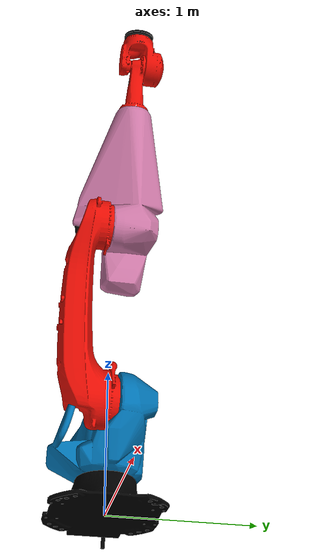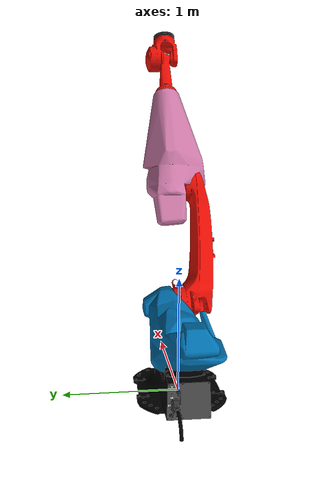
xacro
<?xml version="1.0" encoding="UTF-8"?>
<robot xmlns:xacro="http://ros.org/wiki/xacro" name="kr300_r2700_2">
  <!-- Import macro files  -->
  <xacro:include filename="$(find kuka_quantec_support)/urdf/kr300_r2700_2_macro.xacro"/>
  <xacro:include filename="$(find kuka_quantec_support)/urdf/kr_quantec_ros2_control_macro.xacro"/>
  <!-- Read additional arguments  -->
  <xacro:arg name="driver_version" default="rsi_only"/>
  <xacro:arg name="mode" default="hardware"/>
  <xacro:arg name="gpio_config" default=""/>
  <xacro:arg name="roundtrip_time" default="0"/>
  <xacro:arg name="client_ip" default="0.0.0.0"/>
  <xacro:arg name="client_port" default="59152"/>
  <xacro:arg name="mxa_client_port" default="1337"/>
  <xacro:arg name="controller_ip" default="0.0.0.0"/>
  <xacro:arg name="verify_robot_model" default="true"/>
  <xacro:arg name="prefix" default=""/>
  <xacro:arg name="x" default="0"/>
  <xacro:arg name="y" default="0"/>
  <xacro:arg name="z" default="0"/>
  <xacro:arg name="roll" default="0"/>
  <xacro:arg name="pitch" default="0"/>
  <xacro:arg name="yaw" default="0"/>
  <xacro:arg name="rsi_xml_config_file" default=""/>
  <xacro:kuka_quantec_ros2_control name="$(arg prefix)kr300_r2700_2" driver_version="$(arg driver_version)" client_ip="$(arg client_ip)" client_port="$(arg client_port)" mxa_client_port="$(arg mxa_client_port)" controller_ip="$(arg controller_ip)" prefix="$(arg prefix)" mode="$(arg mode)" gpio_config="$(arg gpio_config)" roundtrip_time="$(arg roundtrip_time)" verify_robot_model="$(arg verify_robot_model)" rsi_xml_config_file="$(arg rsi_xml_config_file)">
    <ext_axes_ros2_control_joints/>
  </xacro:kuka_quantec_ros2_control>
  <!-- world link -->
  <link name="world"/>
  <!-- robot links, joints -->
  <xacro:kuka_kr300_r2700_2_robot prefix="$(arg prefix)" package_name="kuka_quantec_support"/>
  <!-- default world - base_link joint -->
  <joint name="$(arg prefix)world-base_link" type="fixed">
    <parent link="world"/>
    <child link="$(arg prefix)base_link"/>
    <origin xyz="$(arg x) $(arg y) $(arg z)" rpy="$(arg roll) $(arg pitch) $(arg yaw)"/>
  </joint>
</robot>

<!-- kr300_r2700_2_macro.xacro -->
<robot xmlns:xacro="http://www.ros.org/wiki/xacro" name="kr300_r2700_2">
  <xacro:macro name="kuka_kr300_r2700_2_robot" params="prefix package_name">
    <link name="${prefix}base"/>
    <link name="${prefix}base_link">
      <collision>
        <geometry>
          <mesh filename="package://${package_name}/meshes/kr300_r2700_2/collision/base_link.stl"/>
        </geometry>
        <origin rpy="0.0 -0.0 0.0" xyz="0.0 0.0 0.0"/>
      </collision>
      <inertial>
        <inertia ixx="12.830880390826948" ixy="0.0" ixz="0.0" iyy="9.01196989503174" iyz="0.0" izz="14.295886015581125"/>
        <mass value="2.2596E2"/>
        <origin rpy="-0.050860131411839545 -0.0019883389878402684 1.523148744399526" xyz="-0.05948933351035582 0.002155950610727567 0.20325069304301646"/>
      </inertial>
      <visual>
        <geometry>
          <mesh filename="package://${package_name}/meshes/kr300_r2700_2/visual/base_link.dae"/>
        </geometry>
        <origin rpy="0.0 -0.0 0.0" xyz="0.0 0.0 0.0"/>
      </visual>
    </link>
    <link name="${prefix}flange"/>
    <link name="${prefix}link_1">
      <collision>
        <geometry>
          <mesh filename="package://${package_name}/meshes/kr300_r2700_2/collision/link_1.stl"/>
        </geometry>
        <origin rpy="-3.141592653589793 0.0 -0.0" xyz="0.0 -3.742520618194312e-17 0.30560000000000004"/>
      </collision>
      <inertial>
        <inertia ixx="31.78631557136323" ixy="0.0" ixz="0.0" iyy="13.331031863287903" iyz="0.0" izz="34.180672314725456"/>
        <mass value="3.6737E2"/>
        <origin rpy="-0.35119744183070917 -1.2748494702775002 -1.4514723788195054" xyz="0.02826300460026676 0.011134569507580913 -0.23533673952690748"/>
      </inertial>
      <visual>
        <geometry>
          <mesh filename="package://${package_name}/meshes/kr300_r2700_2/visual/link_1.dae"/>
        </geometry>
        <origin rpy="-3.141592653589793 0.0 -0.0" xyz="0.0 -3.742520618194312e-17 0.30560000000000004"/>
      </visual>
    </link>
    <link name="${prefix}link_2">
      <collision>
        <geometry>
          <mesh filename="package://${package_name}/meshes/kr300_r2700_2/collision/link_2.stl"/>
        </geometry>
        <origin rpy="1.5707963267948968 -0.0 1.5707963267948966" xyz="-0.645 -0.32999999999999996 0.07200000000000009"/>
      </collision>
      <inertial>
        <inertia ixx="57.79570981129111" ixy="0.0" ixz="0.0" iyy="5.63272995683346" iyz="0.0" izz="58.55984559100601"/>
        <mass value="2.3206E2"/>
        <origin rpy="-2.820395530490075 -1.2181144847004781 1.2776348095029497" xyz="0.4868709816426786 -0.0019029561320348183 -0.11763677497199002"/>
      </inertial>
      <visual>
        <geometry>
          <mesh filename="package://${package_name}/meshes/kr300_r2700_2/visual/link_2.dae"/>
        </geometry>
        <origin rpy="1.5707963267948968 -0.0 1.5707963267948966" xyz="-0.645 -0.32999999999999996 0.07200000000000009"/>
      </visual>
    </link>
    <link name="${prefix}link_3">
      <collision>
        <geometry>
          <mesh filename="package://${package_name}/meshes/kr300_r2700_2/collision/link_3.stl"/>
        </geometry>
        <origin rpy="1.5707963267948968 -0.0 -0.0" xyz="-0.33000000000000007 1.7950000000000002 0.17500000000000007"/>
      </collision>
      <inertial>
        <inertia ixx="3.511665641677197" ixy="0.0" ixz="0.0" iyy="21.236938206229333" iyz="0.0" izz="22.25683741872681"/>
        <mass value="1.9153E2"/>
        <origin rpy="2.1669667459514144 -0.06384171041203492 -0.054172455510610194" xyz="0.17268469691432153 -0.0754866078421135 0.13713156998903567"/>
      </inertial>
      <visual>
        <geometry>
          <mesh filename="package://${package_name}/meshes/kr300_r2700_2/visual/link_3.dae"/>
        </geometry>
        <origin rpy="1.5707963267948968 -0.0 -0.0" xyz="-0.33000000000000007 1.7950000000000002 0.17500000000000007"/>
      </visual>
    </link>
    <link name="${prefix}link_4">
      <collision>
        <geometry>
          <mesh filename="package://${package_name}/meshes/kr300_r2700_2/collision/link_4.stl"/>
        </geometry>
        <origin rpy="1.8369701987210297e-16 1.5707963267948966 0.0" xyz="-1.9100000000000001 2.0519898299688948e-19 1.158"/>
      </collision>
      <inertial>
        <inertia ixx="0.20114801831278567" ixy="0.0" ixz="0.0" iyy="1.6156024516095273" iyz="0.0" izz="1.6404174473993869"/>
        <mass value="4.7942845677E1"/>
        <origin rpy="1.5709922511064425 -1.391282030791283 -1.5710550346492322" xyz="-8.827699851665032E-6 0.030038038468557137 -0.22035014882022413"/>
      </inertial>
      <visual>
        <geometry>
          <mesh filename="package://${package_name}/meshes/kr300_r2700_2/visual/link_4.dae"/>
        </geometry>
        <origin rpy="1.8369701987210297e-16 1.5707963267948966 0.0" xyz="-1.9100000000000001 2.0519898299688948e-19 1.158"/>
      </visual>
    </link>
    <link name="${prefix}link_5">
      <collision>
        <geometry>
          <mesh filename="package://${package_name}/meshes/kr300_r2700_2/collision/link_5.stl"/>
        </geometry>
        <origin rpy="1.5707963267948968 -3.749399456654644e-33 -6.123233995736766e-17" xyz="-1.55 1.9100000000000001 -0.1065"/>
      </collision>
      <inertial>
        <inertia ixx="0.3430603374426301" ixy="0.0" ixz="0.0" iyy="0.19689279813434987" iyz="0.0" izz="0.3479764098342267"/>
        <mass value="2.3687644624E1"/>
        <origin rpy="1.6224506086845296 -0.931996732036955 -0.06488528019057813" xyz="0.062409087507206966 2.1098685344562437E-4 -0.06405788459182832"/>
      </inertial>
      <visual>
        <geometry>
          <mesh filename="package://${package_name}/meshes/kr300_r2700_2/visual/link_5.dae"/>
        </geometry>
        <origin rpy="1.5707963267948968 -3.749399456654644e-33 -6.123233995736766e-17" xyz="-1.55 1.9100000000000001 -0.1065"/>
      </visual>
    </link>
    <link name="${prefix}link_6">
      <collision>
        <geometry>
          <mesh filename="package://${package_name}/meshes/kr300_r2700_2/collision/link_6.stl"/>
        </geometry>
        <origin rpy="1.2246467991473532e-16 1.5707963267948966 0.0" xyz="-1.9100000000000004 -1.233749536060084e-16 1.7194999999999998"/>
      </collision>
      <inertial>
        <inertia ixx="0.03694112716090631" ixy="0.0" ixz="0.0" iyy="0.03695315329552196" iyz="0.0" izz="0.0482510013261814"/>
        <mass value="1.2245718539E1"/>
        <origin rpy="1.0758644105172148E-4 -9.81246446146609E-5 -0.03310542818452318" xyz="4.595822618513483E-6 -5.5908945912619675E-6 -0.02543618981825055"/>
      </inertial>
      <visual>
        <geometry>
          <mesh filename="package://${package_name}/meshes/kr300_r2700_2/visual/link_6.dae"/>
        </geometry>
        <origin rpy="1.2246467991473532e-16 1.5707963267948966 0.0" xyz="-1.9100000000000004 -1.233749536060084e-16 1.7194999999999998"/>
      </visual>
    </link>
    <link name="${prefix}tool0"/>
    <joint name="${prefix}base_link-base" type="fixed">
      <child link="${prefix}base"/>
      <parent link="${prefix}base_link"/>
    </joint>
    <joint name="${prefix}joint_1" type="revolute">
      <axis xyz="0.0 0.0 1.0"/>
      <child link="${prefix}link_1"/>
      <limit effort="7.29E3" lower="-3.2288591125E0" upper="3.2288591125E0" velocity="1.8325957145940461E0"/>
      <origin rpy="3.141592653589793 -0.0 0.0" xyz="0.0 0.0 0.30560000000000004"/>
      <parent link="${prefix}base_link"/>
    </joint>
    <joint name="${prefix}joint_2" type="revolute">
      <axis xyz="0.0 0.0 1.0"/>
      <child link="${prefix}link_2"/>
      <limit effort="9.60003E3" lower="-2.44346095E0" upper="-8.72664625E-2" velocity="1.7627825445142729E0"/>
      <origin rpy="1.5707963267948966 -0.0 0.0" xyz="0.33 0.07200000000000001 -0.3394"/>
      <parent link="${prefix}link_1"/>
    </joint>
    <joint name="${prefix}joint_3" type="revolute">
      <axis xyz="0.0 0.0 1.0"/>
      <child link="${prefix}link_3"/>
      <limit effort="7.08714342281144E3" lower="-2.0943951E0" upper="2.93215314E0" velocity="1.8675022996339325E0"/>
      <origin rpy="0.0 -0.0 0.0" xyz="1.1500000000000001 0.0 -0.10300000000000001"/>
      <parent link="${prefix}link_2"/>
    </joint>
    <joint name="${prefix}joint_4" type="revolute">
      <axis xyz="0.0 0.0 1.0"/>
      <child link="${prefix}link_4"/>
      <limit effort="2.25887888718356E3" lower="-6.108652375E0" upper="6.108652375E0" velocity="2.4434609527920612E0"/>
      <origin rpy="1.5707963267948966 -0.0 -1.5707963267948966" xyz="0.8280000000000001 -0.115 0.17500000000000002"/>
      <parent link="${prefix}link_3"/>
    </joint>
    <joint name="${prefix}joint_5" type="revolute">
      <axis xyz="0.0 0.0 1.0"/>
      <child link="${prefix}link_5"/>
      <limit effort="2.26120660090655E3" lower="-2.13802833125E0" upper="2.13802833125E0" velocity="1.9722220547535925E0"/>
      <origin rpy="0.0 1.5707963267948966 1.5707963267948966" xyz="0.0 0.1065 -0.392"/>
      <parent link="${prefix}link_4"/>
    </joint>
    <joint name="${prefix}joint_6" type="revolute">
      <axis xyz="0.0 0.0 1.0"/>
      <child link="${prefix}link_6"/>
      <limit effort="1.46107811041986E3" lower="-6.108652375E0" upper="6.108652375E0" velocity="3.1415926535897931E0"/>
      <origin rpy="1.5707963267948966 -0.0 -1.5707963267948966" xyz="0.1695 0.0 -0.1065"/>
      <parent link="${prefix}link_5"/>
    </joint>
    <joint name="${prefix}link6-flange" type="fixed">
      <child link="${prefix}flange"/>
      <origin rpy="0.0 1.5707963267948966 0.0" xyz="0.0 0.0 -0.07050000000000001"/>
      <parent link="${prefix}link_6"/>
    </joint>
    <joint name="${prefix}link6-tool0" type="fixed">
      <child link="${prefix}tool0"/>
      <origin rpy="3.141592653589793 1.2246467991473532E-16 3.141592653589793" xyz="0.0 0.0 -0.07050000000000001"/>
      <parent link="${prefix}link_6"/>
    </joint>
  </xacro:macro>
</robot>
